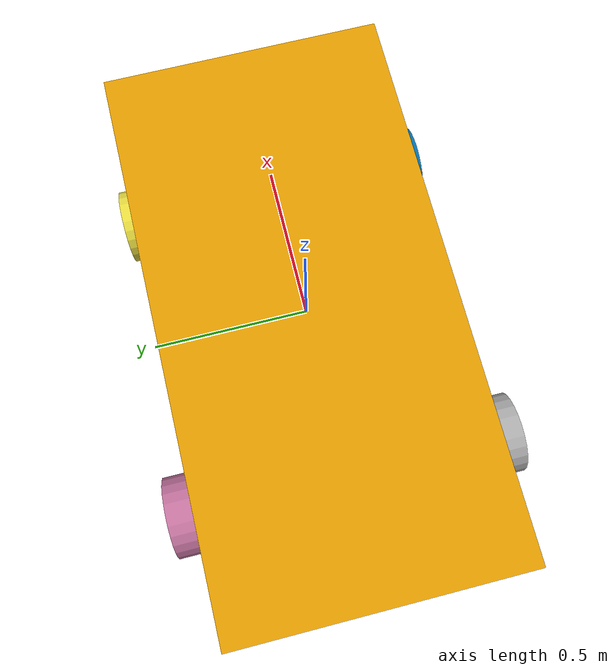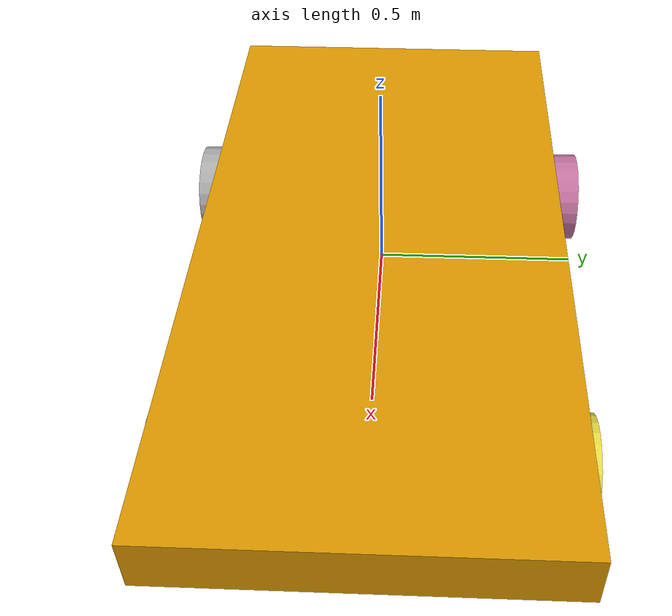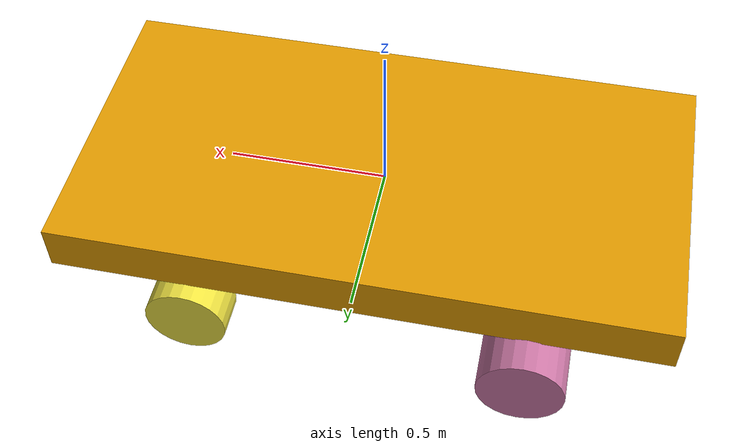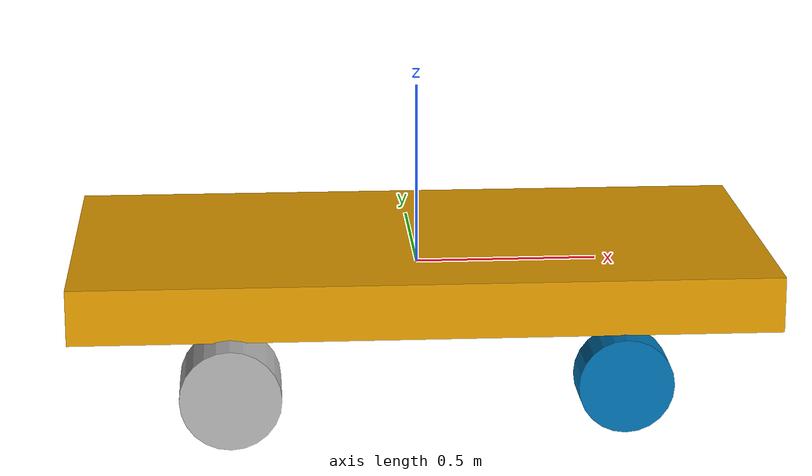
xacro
<?xml version="1.0" encoding="UTF-8"?>
<robot xmlns:xacro="http://ros.org/wiki/xacro" name="indyav_car">
  <xacro:include filename="$(find indyav_gazebo)/xacro/go_kart.xacro"/>
  <xacro:include filename="$(find indyav_gazebo)/xacro/wheels.xacro"/>
  <xacro:include filename="$(find indyav_gazebo)/xacro/axles.xacro"/>
  <xacro:include filename="$(find navigator_gazebo)/urdf/sylphase.xacro" />

  <link name="base_link">
    <xacro:body_inertial/>
    <visual>
      <xacro:body_geometry/>
    </visual>
    <collision>
      <xacro:body_geometry/>
    </collision>
  </link>

  <xacro:front_axle name="front_left_axle"  xyz="0.52 0.47 -0.2"/>
  <xacro:front_axle name="front_right_axle"  xyz="0.52 -0.47 -0.2"/>

  <xacro:front_wheel name="front_left_wheel" xyz="0 0 0" parent_link="front_left_axle_link"/>
  <xacro:front_wheel name="front_right_wheel" xyz="0 0 0" parent_link="front_right_axle_link"/>

  <xacro:back_axle name="back_axle" xyz="-0.52 0 -0.2"/>

  <xacro:back_wheel name="back_left_wheel"  xyz="0 0.4825 0" parent_link="back_axle_link"/>
  <xacro:back_wheel name="back_right_wheel"  xyz="0 -0.4825 0" parent_link="back_axle_link"/>

  <gazebo>
    <plugin name="back_wheel_plugin" filename="libbackwheel_plugin.so">
      <wheels>
        <wheel_0> back_axle_link_to_back_right_wheel_link_joint </wheel_0>
        <wheel_1> back_axle_link_to_back_left_wheel_link_joint </wheel_1>
      </wheels>
      <back_axle_joint> base_link_to_back_axle_link_joint </back_axle_joint>
      <wheel_radius>${back_wheel_radius}</wheel_radius>
      <engine_to_wheel_ratio>10</engine_to_wheel_ratio>
      <max_velocity>20</max_velocity>
      <topic_name> /throttle </topic_name>
    </plugin>
  </gazebo>

  <xacro:sylphase name="ins"
                  xyz="-0.585 0.0 0.0" rpy="0 0 0" />
  <gazebo>
    <plugin name="gazebo_ros_control" filename="libgazebo_ros_control.so"/>
  </gazebo>
</robot>

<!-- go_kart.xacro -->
<!-- TODO: find out if car is box -->

<robot xmlns:xacro="http://ros.org/wiki/xacro" name="go_kart">
  <xacro:include filename="$(find mil_gazebo)/xacro/util.xacro"/>

  <xacro:property name="chassis_length" value = "1.89"/>
  <xacro:property name="chassis_width" value = "0.965"/>
  <xacro:property name="chassis_height" value = "0.15"/>
  <xacro:property name="chassis_mass" value = "67.950"/>

  <xacro:macro name="body_geometry">
    <geometry>
      <box size="${chassis_length} ${chassis_width} ${chassis_height}" />
    </geometry>
  </xacro:macro>

  <xacro:macro name="body_inertial">
    <inertial>
      <mass value="${chassis_mass}"/>
      <xacro:box_inertia x="${chassis_length}" y="${chassis_width}" z="${chassis_height}" mass="${chassis_mass}"/>
    </inertial>
  </xacro:macro>

</robot>

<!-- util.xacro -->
<robot xmlns:xacro="http://ros.org/wiki/xacro">
  <!-- determined by https://en.wikipedia.org/wiki/List_of_moments_of_inertia -->
  <xacro:macro name="box_inertia" params="x y z mass">
    <inertia ixx="${((y*y) + (z*z))*mass/12.0}" ixy="0.0" ixz="0.0" iyy="${((x*x) + (z*z))*mass/12.0}" iyz="0.0" izz="${((y*y) + (x*x))*mass/12.0}"/>
  </xacro:macro>

  <xacro:macro name="cylinder_inertia" params="r h mass">
    <inertia ixx="${((3*r*r) + (h*h))*mass/12.0}" ixy="0.0" ixz="0.0" iyy="${((3*r*r) + (h*h))*mass/12.0}" iyz="0.0" izz="${(r*r)*mass/2.0}"/>
  </xacro:macro>

  <xacro:macro name="joint_transmission" params="name parent_link">
    <transmission name="${name}_transmission">
      <type>transmission_interface/SimpleTransmission</type>
      <joint name="${parent_link}_to_${name}_link_joint">
        <hardwareInterface>hardware_interface/EffortJointInterface</hardwareInterface>
      </joint>
      <actuator name="${name}_actuator">
        <hardwareInterface>hardware_interface/EffortJointInterface</hardwareInterface>
        <mechanicalReduction>1</mechanicalReduction>
      </actuator>
    </transmission>
  </xacro:macro>
</robot>

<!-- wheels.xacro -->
<robot xmlns:xacro="http://ros.org/wiki/xacro" name="wheels">
  <xacro:include filename="$(find mil_gazebo)/xacro/util.xacro"/>

  <xacro:property name="front_wheel_radius" value="0.127"/>
  <xacro:property name="front_wheel_width" value="0.127"/>
  <xacro:property name="front_wheel_mass" value="3"/>

  <xacro:property name="back_wheel_radius" value="0.1335"/>
  <xacro:property name="back_wheel_width" value="0.203"/>
  <xacro:property name="back_wheel_mass" value="5"/>

  <xacro:macro name="front_wheel_geometry">
    <geometry>
       <cylinder length="${front_wheel_width}" radius="${front_wheel_radius}"/>
    </geometry>
  </xacro:macro>

  <xacro:macro name="back_wheel_geometry">
    <geometry>
       <cylinder length="${back_wheel_width}" radius="${back_wheel_radius}"/>
    </geometry>
  </xacro:macro>

  <xacro:macro name="do_wheel_surface" params="name">
    <gazebo reference="${name}_link">
      <mu1>500</mu1> <!-- friction parallel to the tire (wheels need friction to roll) -->
    </gazebo>
  </xacro:macro>

  <xacro:macro name="front_wheel_origin">
     <origin rpy="0 1.5708 0"/>
  </xacro:macro>

  <xacro:macro name="back_wheel_origin">
     <origin rpy="0 1.5708 1.5708"/>
  </xacro:macro>

  <xacro:macro name="front_wheel_physical">
    <inertial>
      <xacro:front_wheel_origin/>
      <mass value="${front_wheel_mass}"/>
      <xacro:cylinder_inertia h="${front_wheel_width}" r="${front_wheel_radius}" mass="${front_wheel_mass}"/>
    </inertial>
    <collision>
      <xacro:front_wheel_origin/>
      <xacro:front_wheel_geometry/>
    </collision>
    <visual>
      <xacro:front_wheel_origin/>
      <xacro:front_wheel_geometry/>
    </visual>
  </xacro:macro>

  <xacro:macro name="back_wheel_physical">
    <inertial>
      <xacro:back_wheel_origin/>
      <mass value="${back_wheel_mass}"/>
      <xacro:cylinder_inertia h="${back_wheel_width}" r="${back_wheel_radius}" mass="${back_wheel_mass}"/>
    </inertial>
    <collision>
      <xacro:back_wheel_origin/>
      <xacro:back_wheel_geometry/>
    </collision>
    <visual>
      <xacro:back_wheel_origin/>
      <xacro:back_wheel_geometry/>
    </visual>
  </xacro:macro>

  <!--Front Wheel Xacro-->
  <xacro:macro name="front_wheel" params="name xyz parent_link:='base_link'">
    <link name="${name}_link">
       <xacro:front_wheel_physical/>
    </link>

    <joint name="${parent_link}_to_${name}_link_joint" type="continuous">
      <parent link="${parent_link}" />
      <child link="${name}_link" />
      <origin xyz="${xyz}" rpy="0 0 0"/>
      <axis xyz="1 0 0"/>
    </joint>

    <xacro:do_wheel_surface name="${name}"/>
    <xacro:joint_transmission name="${name}" parent_link="${parent_link}"/>
  </xacro:macro>

  <!--Back Wheel Xacro-->
  <xacro:macro name="back_wheel" params="name xyz parent_link:='base_link'">
    <link name="${name}_link">
       <xacro:back_wheel_physical/>
    </link>

    <joint name="${parent_link}_to_${name}_link_joint" type="fixed">
      <parent link="${parent_link}" />
      <child link="${name}_link" />
      <origin xyz="${xyz}" rpy="0 0 0"/>
    </joint>

    <xacro:do_wheel_surface name="${name}"/>
  </xacro:macro>
</robot>

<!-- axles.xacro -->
<robot xmlns:xacro="http://ros.org/wiki/xacro" name="axles">

  <xacro:macro name="axle_physical">
      <xacro:property name="axle_length" value="0.005"/>
      <xacro:property name="axle_mass" value="1"/>
      <xacro:property name="axle_radius" value="0.005"/>

      <inertial>
        <mass value="${axle_mass}"/>
        <origin xyz="0 0 0" rpy="0 0 1.5708"/>
        <xacro:cylinder_inertia h="${axle_length}" r="${axle_radius}" mass="${axle_mass}"/>
      </inertial>
  </xacro:macro>

  <!-- Front Axle Xacro -->
  <xacro:macro name="front_axle" params="name xyz parent_link:='base_link'
                                                      max_deflection_left_deg:='45'
                                                      max_deflection_right_deg:='45'">

    <link name="${name}_link">
       <xacro:axle_physical/>
    </link>

    <joint name="${parent_link}_to_${name}_link_joint" type="revolute">
      <parent link="${parent_link}" />
      <child link="${name}_link" />
      <limit lower="${radians(-1 * float(max_deflection_right_deg))}"
             upper="${radians(float(max_deflection_left_deg))}" effort="10000" velocity="100"/>
      <axis xyz="0 0 1"/>
      <origin xyz="${xyz}" rpy="0 0 1.5708"/>
    </joint>

    <xacro:joint_transmission name="${name}" parent_link="${parent_link}"/>
  </xacro:macro>

  <!-- Back Axle Xacro -->
  <xacro:macro name="back_axle" params="name xyz parent_link:='base_link'">

    <link name="${name}_link">
       <xacro:axle_physical/>
    </link>

    <joint name="${parent_link}_to_${name}_link_joint" type="continuous">
      <parent link="${parent_link}" />
      <child link="${name}_link" />
      <axis xyz="0 1 0"/>
      <origin xyz="${xyz}"/>
    </joint>

    <xacro:joint_transmission name="${name}" parent_link="${parent_link}"/>
  </xacro:macro>

</robot>

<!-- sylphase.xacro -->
<robot xmlns:xacro="http://ros.org/wiki/xacro">
  <xacro:macro name="sylphase" params="name='ins' parent='base_link'
                        xyz:='0 0 0' rpy:='0 0 0'">
    <xacro:include filename="$(find navigator_gazebo)/urdf/fixed_link_persistent.xacro"/>
    <link name="${name}"/>
    <gazebo reference="${name}">
      <sensor name="${name}_imu" type="imu"/>
      <sensor name="${name}_gps" type="gps"/>
    </gazebo>
    <joint name="${name}_to_base_link" type="fixed">
      <parent link="${parent}"/>
      <child link="${name}"/>
      <origin xyz="${xyz}" rpy="${rpy}"/>
    </joint>
    <gazebo>
      <plugin name="sylphase_plugin" filename="libsylphase_gazebo.so">
        <pose>${xyz} ${rpy}</pose>
        <child_frame>${name}</child_frame>
        <odom_topic>ins_odom</odom_topic>
      </plugin>
    </gazebo>
  </xacro:macro>
</robot>
